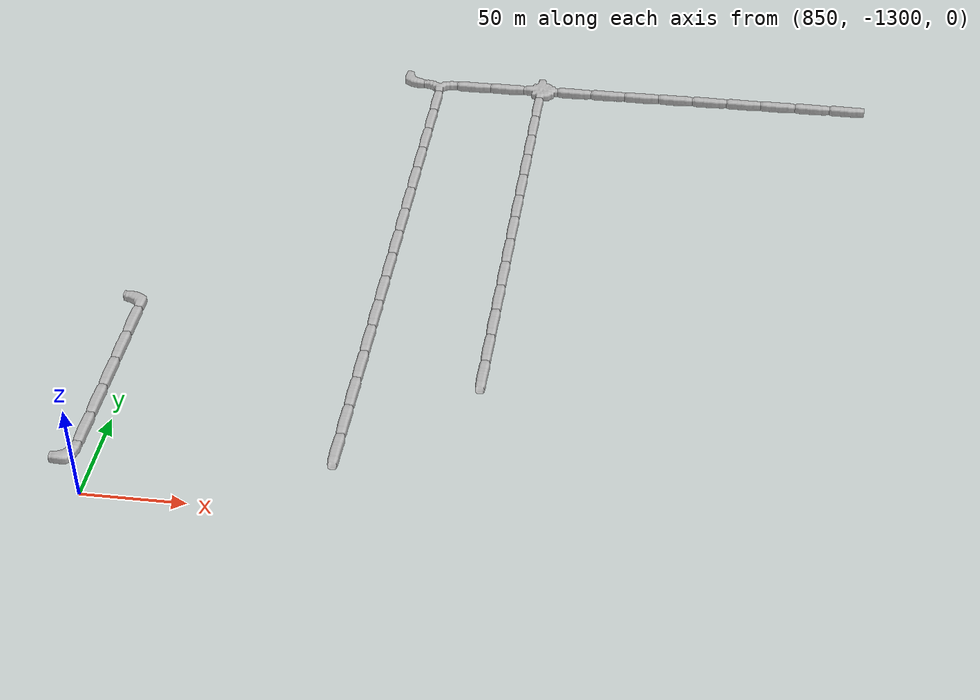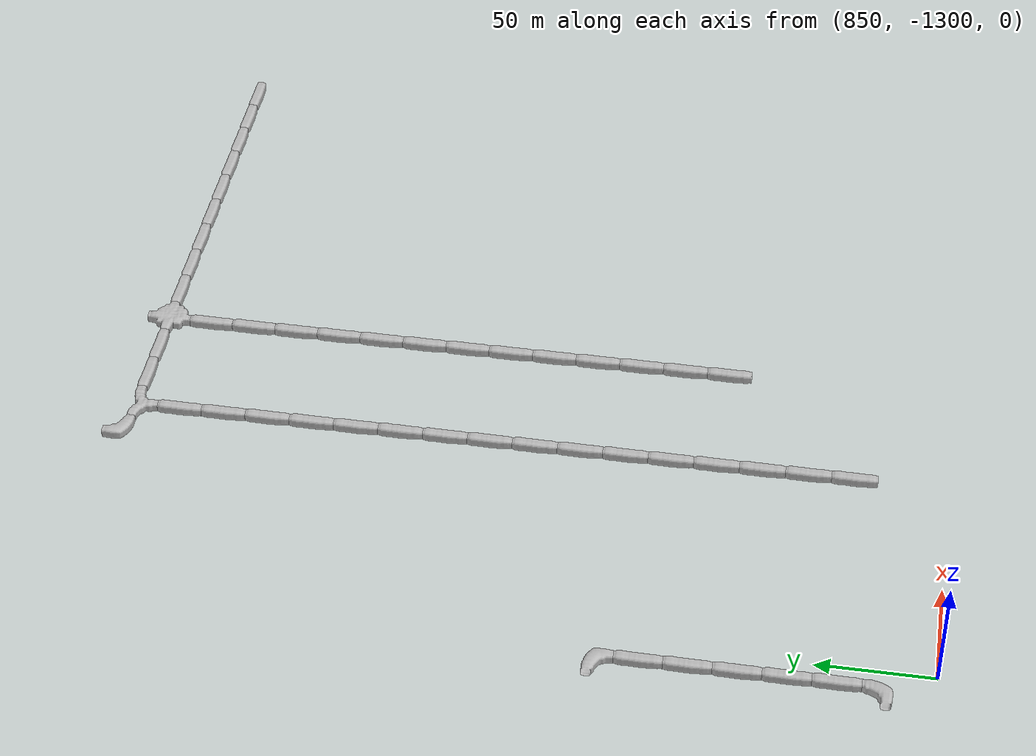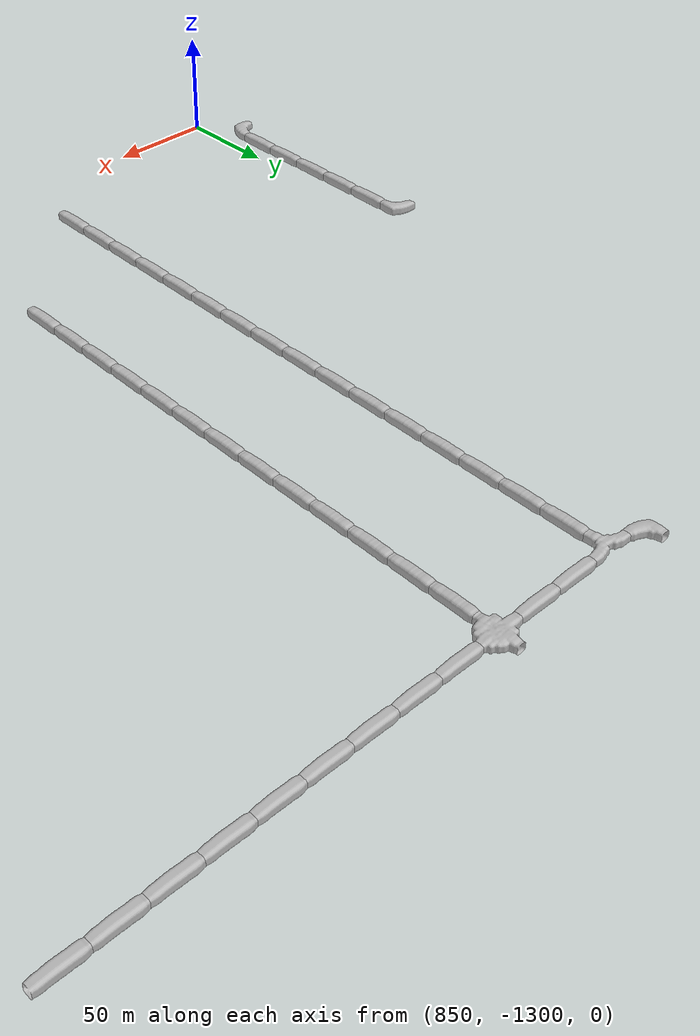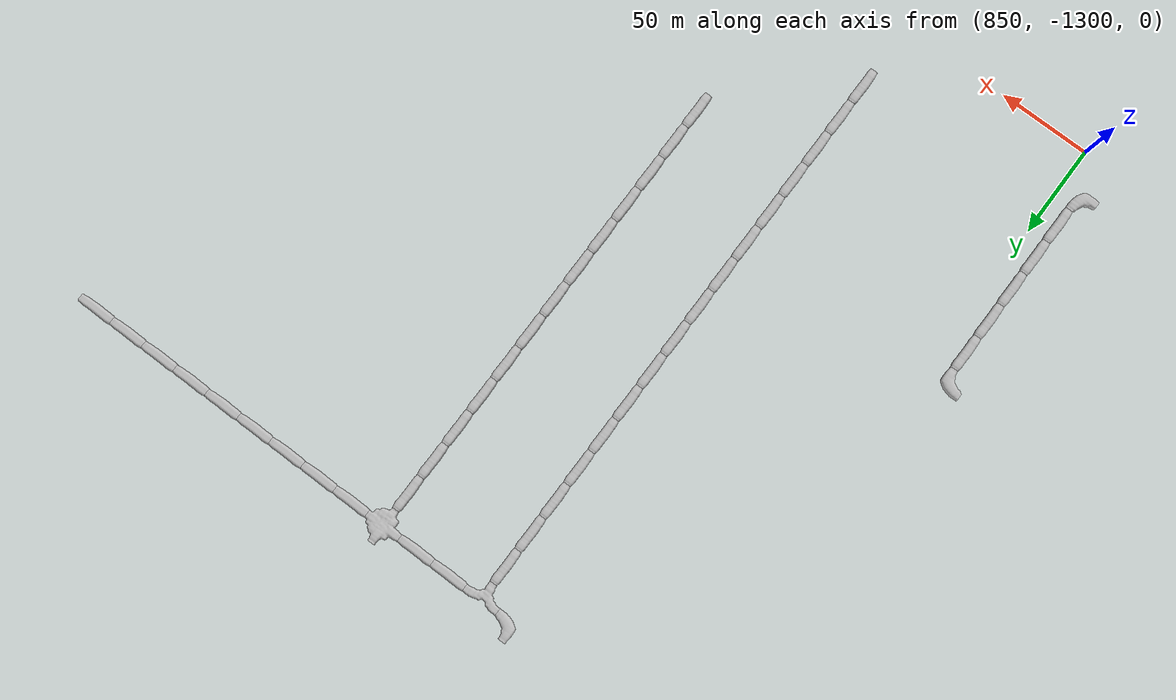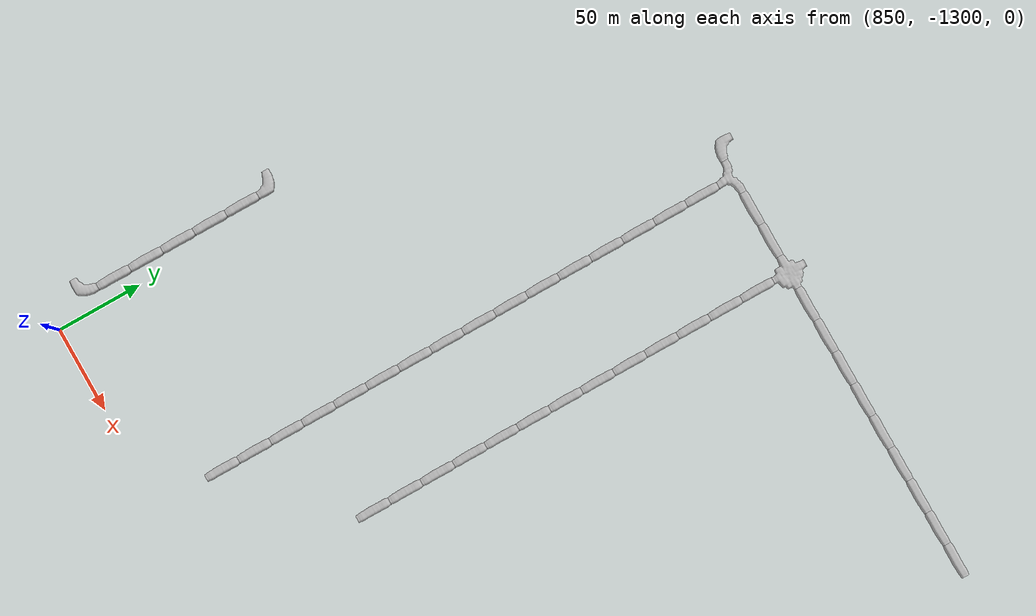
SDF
<sdf version="1.6">
 <world name="cave_16000_8">
  <include>
   <static>true</static>
   <name>cave_47_-47</name>
   <pose>940 -940 0 0 0 0.0</pose>
   <uri>model://cave_L_20m</uri>
  </include>
  <include>
   <static>true</static>
   <name>cave_48_-47</name>
   <pose>960 -940 0 0 0 3.141592653589793</pose>
   <uri>model://cave_3way_20m</uri>
  </include>
  <include>
   <static>true</static>
   <name>cave_49_-47</name>
   <pose>980 -940 0 0 0 1.5707963267948966</pose>
   <uri>model://cave_straight_20m</uri>
  </include>
  <include>
   <static>true</static>
   <name>cave_50_-47</name>
   <pose>1000 -940 0 0 0 1.5707963267948966</pose>
   <uri>model://cave_straight_20m</uri>
  </include>
  <include>
   <static>true</static>
   <name>cave_51_-47</name>
   <pose>1020 -940 0 0 0 -1.5707963267948966</pose>
   <uri>model://cave_4way_20m</uri>
  </include>
  <include>
   <static>true</static>
   <name>cave_52_-47</name>
   <pose>1040 -940 0 0 0 1.5707963267948966</pose>
   <uri>model://cave_straight_20m</uri>
  </include>
  <include>
   <static>true</static>
   <name>cave_53_-47</name>
   <pose>1060 -940 0 0 0 1.5707963267948966</pose>
   <uri>model://cave_straight_20m</uri>
  </include>
  <include>
   <static>true</static>
   <name>cave_54_-47</name>
   <pose>1080 -940 0 0 0 1.5707963267948966</pose>
   <uri>model://cave_straight_20m</uri>
  </include>
  <include>
   <static>true</static>
   <name>cave_55_-47</name>
   <pose>1100 -940 0 0 0 1.5707963267948966</pose>
   <uri>model://cave_straight_20m</uri>
  </include>
  <include>
   <static>true</static>
   <name>cave_56_-47</name>
   <pose>1120 -940 0 0 0 1.5707963267948966</pose>
   <uri>model://cave_straight_20m</uri>
  </include>
  <include>
   <static>true</static>
   <name>cave_57_-47</name>
   <pose>1140 -940 0 0 0 1.5707963267948966</pose>
   <uri>model://cave_straight_20m</uri>
  </include>
  <include>
   <static>true</static>
   <name>cave_58_-47</name>
   <pose>1160 -940 0 0 0 1.5707963267948966</pose>
   <uri>model://cave_straight_20m</uri>
  </include>
  <include>
   <static>true</static>
   <name>cave_59_-47</name>
   <pose>1180 -940 0 0 0 1.5707963267948966</pose>
   <uri>model://cave_straight_20m</uri>
  </include>
  <include>
   <static>true</static>
   <name>cave_60_-47</name>
   <pose>1200 -940 0 0 0 1.5707963267948966</pose>
   <uri>model://cave_straight_20m</uri>
  </include>
  <include>
   <static>true</static>
   <name>cave_51_-48</name>
   <pose>1020 -960 0 0 0 0.0</pose>
   <uri>model://cave_straight_20m</uri>
  </include>
  <include>
   <static>true</static>
   <name>cave_51_-49</name>
   <pose>1020 -980 0 0 0 0.0</pose>
   <uri>model://cave_straight_20m</uri>
  </include>
  <include>
   <static>true</static>
   <name>cave_51_-50</name>
   <pose>1020 -1000 0 0 0 0.0</pose>
   <uri>model://cave_straight_20m</uri>
  </include>
  <include>
   <static>true</static>
   <name>cave_51_-51</name>
   <pose>1020 -1020 0 0 0 0.0</pose>
   <uri>model://cave_straight_20m</uri>
  </include>
  <include>
   <static>true</static>
   <name>cave_51_-52</name>
   <pose>1020 -1040 0 0 0 0.0</pose>
   <uri>model://cave_straight_20m</uri>
  </include>
  <include>
   <static>true</static>
   <name>cave_51_-53</name>
   <pose>1020 -1060 0 0 0 0.0</pose>
   <uri>model://cave_straight_20m</uri>
  </include>
  <include>
   <static>true</static>
   <name>cave_51_-54</name>
   <pose>1020 -1080 0 0 0 0.0</pose>
   <uri>model://cave_straight_20m</uri>
  </include>
  <include>
   <static>true</static>
   <name>cave_51_-55</name>
   <pose>1020 -1100 0 0 0 0.0</pose>
   <uri>model://cave_straight_20m</uri>
  </include>
  <include>
   <static>true</static>
   <name>cave_51_-56</name>
   <pose>1020 -1120 0 0 0 0.0</pose>
   <uri>model://cave_straight_20m</uri>
  </include>
  <include>
   <static>true</static>
   <name>cave_51_-57</name>
   <pose>1020 -1140 0 0 0 0.0</pose>
   <uri>model://cave_straight_20m</uri>
  </include>
  <include>
   <static>true</static>
   <name>cave_51_-58</name>
   <pose>1020 -1160 0 0 0 0.0</pose>
   <uri>model://cave_straight_20m</uri>
  </include>
  <include>
   <static>true</static>
   <name>cave_51_-59</name>
   <pose>1020 -1180 0 0 0 0.0</pose>
   <uri>model://cave_straight_20m</uri>
  </include>
  <include>
   <static>true</static>
   <name>cave_51_-60</name>
   <pose>1020 -1200 0 0 0 0.0</pose>
   <uri>model://cave_straight_20m</uri>
  </include>
  <include>
   <static>true</static>
   <name>cave_48_-48</name>
   <pose>960 -960 0 0 0 0.0</pose>
   <uri>model://cave_straight_20m</uri>
  </include>
  <include>
   <static>true</static>
   <name>cave_48_-49</name>
   <pose>960 -980 0 0 0 0.0</pose>
   <uri>model://cave_straight_20m</uri>
  </include>
  <include>
   <static>true</static>
   <name>cave_48_-50</name>
   <pose>960 -1000 0 0 0 0.0</pose>
   <uri>model://cave_straight_20m</uri>
  </include>
  <include>
   <static>true</static>
   <name>cave_48_-51</name>
   <pose>960 -1020 0 0 0 0.0</pose>
   <uri>model://cave_straight_20m</uri>
  </include>
  <include>
   <static>true</static>
   <name>cave_48_-52</name>
   <pose>960 -1040 0 0 0 0.0</pose>
   <uri>model://cave_straight_20m</uri>
  </include>
  <include>
   <static>true</static>
   <name>cave_48_-53</name>
   <pose>960 -1060 0 0 0 0.0</pose>
   <uri>model://cave_straight_20m</uri>
  </include>
  <include>
   <static>true</static>
   <name>cave_48_-54</name>
   <pose>960 -1080 0 0 0 0.0</pose>
   <uri>model://cave_straight_20m</uri>
  </include>
  <include>
   <static>true</static>
   <name>cave_48_-55</name>
   <pose>960 -1100 0 0 0 0.0</pose>
   <uri>model://cave_straight_20m</uri>
  </include>
  <include>
   <static>true</static>
   <name>cave_48_-56</name>
   <pose>960 -1120 0 0 0 0.0</pose>
   <uri>model://cave_straight_20m</uri>
  </include>
  <include>
   <static>true</static>
   <name>cave_48_-57</name>
   <pose>960 -1140 0 0 0 0.0</pose>
   <uri>model://cave_straight_20m</uri>
  </include>
  <include>
   <static>true</static>
   <name>cave_48_-58</name>
   <pose>960 -1160 0 0 0 0.0</pose>
   <uri>model://cave_straight_20m</uri>
  </include>
  <include>
   <static>true</static>
   <name>cave_48_-59</name>
   <pose>960 -1180 0 0 0 0.0</pose>
   <uri>model://cave_straight_20m</uri>
  </include>
  <include>
   <static>true</static>
   <name>cave_48_-60</name>
   <pose>960 -1200 0 0 0 0.0</pose>
   <uri>model://cave_straight_20m</uri>
  </include>
  <include>
   <static>true</static>
   <name>cave_48_-61</name>
   <pose>960 -1220 0 0 0 0.0</pose>
   <uri>model://cave_straight_20m</uri>
  </include>
  <include>
   <static>true</static>
   <name>cave_48_-62</name>
   <pose>960 -1240 0 0 0 0.0</pose>
   <uri>model://cave_straight_20m</uri>
  </include>
  <include>
   <static>true</static>
   <name>cave_48_-63</name>
   <pose>960 -1260 0 0 0 0.0</pose>
   <uri>model://cave_straight_20m</uri>
  </include>
  <include>
   <static>true</static>
   <name>cave_42_-58</name>
   <pose>840 -1160 0 0 0 3.141592653589793</pose>
   <uri>model://cave_L_20m</uri>
  </include>
  <include>
   <static>true</static>
   <name>cave_42_-59</name>
   <pose>840 -1180 0 0 0 0.0</pose>
   <uri>model://cave_straight_20m</uri>
  </include>
  <include>
   <static>true</static>
   <name>cave_42_-60</name>
   <pose>840 -1200 0 0 0 0.0</pose>
   <uri>model://cave_straight_20m</uri>
  </include>
  <include>
   <static>true</static>
   <name>cave_42_-61</name>
   <pose>840 -1220 0 0 0 0.0</pose>
   <uri>model://cave_straight_20m</uri>
  </include>
  <include>
   <static>true</static>
   <name>cave_42_-62</name>
   <pose>840 -1240 0 0 0 0.0</pose>
   <uri>model://cave_straight_20m</uri>
  </include>
  <include>
   <static>true</static>
   <name>cave_42_-63</name>
   <pose>840 -1260 0 0 0 0.0</pose>
   <uri>model://cave_straight_20m</uri>
  </include>
  <include>
   <static>true</static>
   <name>cave_42_-64</name>
   <pose>840 -1280 0 0 0 1.5707963267948966</pose>
   <uri>model://cave_L_20m</uri>
  </include>
 </world>
</sdf>
